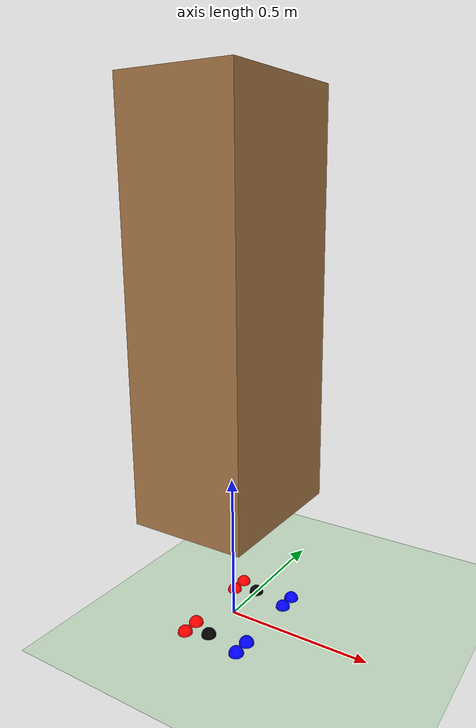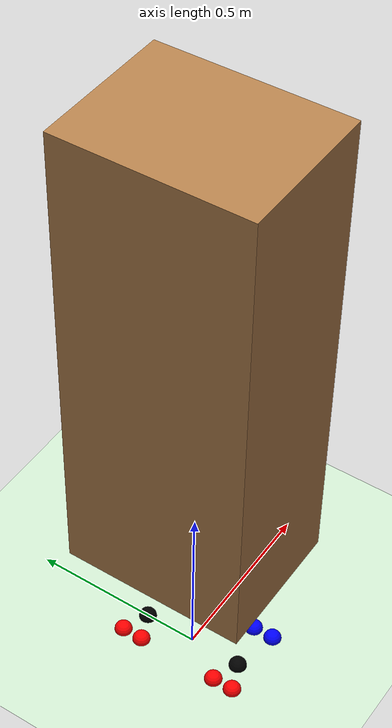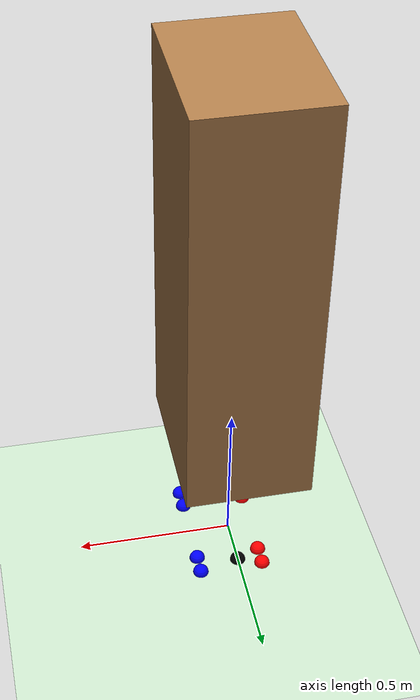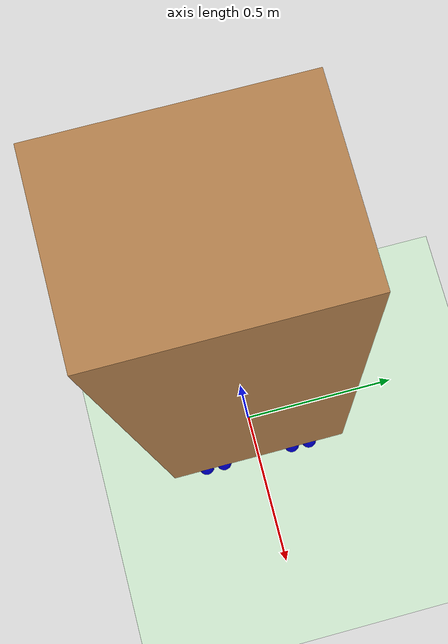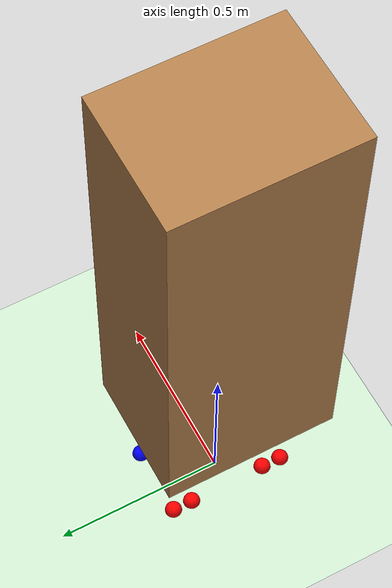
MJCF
<mujoco model="srb">
    <compiler angle="radian" inertiafromgeom="true"/>
    <default>
        <joint limited="true" armature="1" damping="1"/>
        <geom conaffinity="1" condim="1" contype="1" margin="0.001" rgba="0.7 0.5 0.3 1"/>
        <motor ctrllimited="true" ctrlrange="-0.5 0.5"/>
    </default>
    <option integrator="RK4" iterations="50" solver="CG" timestep="0.0083332000"/>
    <asset>
        <texture builtin="gradient" height="100" rgb1=".4 .5 .6" rgb2="0 0 0" type="skybox" width="100"/>
        <texture builtin="flat" height="1278" mark="cross" markrgb="1 1 1" name="texgeom" random="0.01" rgb1="0.8 0.6 0.4" rgb2="0.8 0.6 0.4" type="cube" width="127"/>
        <texture name="grid" type="2d" builtin="checker" rgb1=".1 .2 .3" rgb2=".2 .3 .4" width="300" height="300" mark="edge" markrgb=".2 .3 .4"/>
        <material name="MatPlane" reflectance="0.2" texrepeat="1 1" texuniform="true" texture="grid"/>
        <material name="geom" texture="texgeom" texuniform="true"/>
    </asset>
    <worldbody>
        <geom condim="3" friction="1 .1 .1" material="MatPlane" name="floor" pos="0 0 0" rgba="0.8 0.9 0.8 1" size="50 50 0.2" type="plane" contype="0" conaffinity="0"/>
        <light cutoff="100" diffuse="1 1 1" dir="-0 0 -1.3" directional="true" exponent="1" pos="0 0 1.3" specular=".1 .1 .1"/>
        <body name="cdm" pos="0 0 1.067757440991862">
            <geom name="cdm" type="box" size="0.19557607215607947 0.25406692031825 0.667757440991862" mass="60"/>
            <joint type="free"/>
			<!-- Adding the left foot spheres -->
			<site name="left_foot_center" pos="0 0.14778803607803974 -1.067757440991862" size="0.025" type="sphere" rgba="0 0 0 1"/>
			<site name="left_foot_lf" pos="0.13 0.17778803607803974 -1.067757440991862" size="0.025" type="sphere" rgba="0 0 1 1"/>
			<site name="left_foot_rf" pos="0.13 0.11778803607803974 -1.067757440991862" size="0.025" type="sphere" rgba="0 0 1 1"/>
			<site name="left_foot_lb" pos="-0.075 0.17778803607803974 -1.067757440991862" size="0.025" type="sphere" rgba="1 0 0 1"/>
			<site name="left_foot_rb" pos="-0.075 0.11778803607803974 -1.067757440991862" size="0.025" type="sphere" rgba="1 0 0 1"/>
			<!-- Adding the right foot spheres -->
			<site name="right_foot_center" pos="0 -0.14778803607803974 -1.067757440991862" size="0.025" type="sphere" rgba="0 0 0 1"/>
			<site name="right_foot_lf" pos="0.13 -0.11778803607803974 -1.067757440991862" size="0.025" type="sphere" rgba="0 0 1 1"/>
			<site name="right_foot_rf" pos="0.13 -0.17778803607803974 -1.067757440991862" size="0.025" type="sphere" rgba="0 0 1 1"/>
			<site name="right_foot_lb" pos="-0.075 -0.11778803607803974 -1.067757440991862" size="0.025" type="sphere" rgba="1 0 0 1"/>
			<site name="right_foot_rb" pos="-0.075 -0.17778803607803974 -1.067757440991862" size="0.025" type="sphere" rgba="1 0 0 1"/>
		</body>
    </worldbody>
</mujoco>
